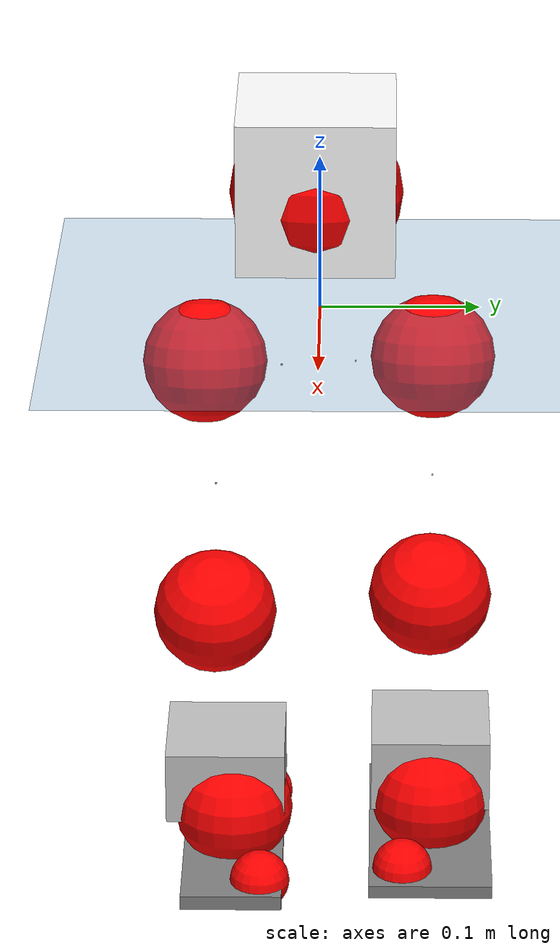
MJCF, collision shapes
<mujoco model="pi_12dof_release_v1">
  <compiler angle="radian" assetdir="assets" balanceinertia="true" inertiafromgeom="false"/>

  <option timestep="0.005" density="1.2" viscosity="2e-05"/>

  <size nkey="1"/>

  <visual>
    <quality shadowsize="8192"/>
    <map shadowclip="0.5"/>
  </visual>

  <default>
    <default class="/">
      <joint armature="0.01" damping="0.01" frictionloss="0.01"/>
      <geom contype="0" conaffinity="0" group="1" solref="-1000 -80"/>
      <site size="0.01 0.005 0.005" group="5"/>
      <general forcelimited="true" biastype="affine" gainprm="20" biasprm="0 -20 -0.5"/>
      <default class="foot">
        <geom size="0.0845 0.036 0.005" type="box" condim="6" group="4" priority="1" friction="0.9 0.2 0.2" solimp="0.015 1 0.005"/>
      </default>
      <default class="reward_collision_sphere">
        <geom group="5" rgba="1 0 0 1"/>
      </default>
    </default>
  </default>

  <asset>
    <texture type="skybox" colorspace="auto" name="//unnamed_texture_0" builtin="gradient" rgb1="0.95 0.95 0.95" rgb2="0.95 0.95 0.95" width="100" height="600"/>
    <texture type="2d" colorspace="auto" name="texplane" builtin="checker" rgb1="0.345 0.575 0.748" rgb2="0.345 0.575 0.748" markrgb="1 1 1" width="512" height="512"/>
    <material name="MatPlane" class="/" texture="texplane" texuniform="true" texrepeat="2 2" specular="0.9"/>
    <mesh name="baselink_1" class="/" file="baselink_1.STL"/>
    <mesh name="r_hip_pitch_link" class="/" file="r_hip_pitch_link.STL"/>
    <mesh name="r_hip_roll_link" class="/" file="r_hip_roll_link.STL"/>
    <mesh name="r_thigh_link" class="/" file="r_thigh_link.STL"/>
    <mesh name="r_calf_link" class="/" file="r_calf_link.STL"/>
    <mesh name="r_ankle_pitch_link" class="/" file="r_ankle_pitch_link.STL"/>
    <mesh name="r_ankle_roll_link" class="/" file="r_ankle_roll_link.STL"/>
    <mesh name="l_hip_pitch_link" class="/" file="l_hip_pitch_link.STL"/>
    <mesh name="l_hip_roll_link" class="/" file="l_hip_roll_link.STL"/>
    <mesh name="l_thigh_link" class="/" file="l_thigh_link.STL"/>
    <mesh name="l_calf_link" class="/" file="l_calf_link.STL"/>
    <mesh name="l_ankle_pitch_link" class="/" file="l_ankle_pitch_link.STL"/>
    <mesh name="l_ankle_roll_link" class="/" file="l_ankle_roll_link.STL"/>
  </asset>

  <worldbody>
    <geom name="floor" class="/" size="100 100 0.125" type="plane" group="0" material="MatPlane"/>
    <light name="toplight_shadow" class="/" pos="0 0 5" dir="0.0990148 0.0990148 -0.990148" type="directional" ambient="0.04 0.04 0.04" diffuse="0.55 0.55 0.55" specular="0.12 0.12 0.12"/>
    <light name="toplight_fill" class="/" pos="0 0 5" dir="0.0990148 0.0990148 -0.990148" type="directional" castshadow="false" ambient="0.04 0.04 0.04" diffuse="0.3 0.3 0.3" specular="0.08 0.08 0.08"/>
    <body name="trunk" pos="0.000696274 -0.00236153 -0.0022806" quat="0.999999 -0.000117256 0.000533946 -0.00103409">
      <inertial pos="-0.000406236 0.000123174 0.0481851" quat="0.691586 0.0142876 -0.00233832 0.722149" mass="2.08305" diaginertia="0.00528112 0.00595164 0.00806442"/>
      <joint name="//unnamed_joint_0" type="free"/>
      <geom name="//unnamed_geom_1" class="/" type="mesh" density="0" rgba="1 1 1 1" mesh="baselink_1"/>
      <geom name="//unnamed_geom_2" class="/" size="0.0489982 0.0489982 0.0489982" pos="0 0 0.0909527" type="box" rgba="1 1 1 1"/>
      <geom name="//unnamed_geom_3" class="reward_collision_sphere" size="0.053898" pos="0 0 0.0795836"/>
      <site name="imu" class="/" pos="0.00145796 -0.00437883 -0.00439066" size="0.00979964"/>
      <camera name="track" class="/" pos="0 -1.84118 0" quat="0.707107 0.707107 0 0" mode="trackcom"/>
      <camera name="ego_camera" class="/" pos="0.0661797 0 0.204643" quat="-0.5 -0.5 0.5 0.5"/>
      <body name="r_hip_pitch_link" pos="0.00198096 -0.0219872 -0.0365065" quat="0.992202 -0.00011106 -0.124639 1.55035e-05">
        <inertial pos="0.00089869 -0.0527244 -0.0012247" quat="-0.0213112 0.701031 -0.0271553 0.712295" mass="0.349769" diaginertia="5.96015e-05 6.35974e-05 0.000162284"/>
        <joint name="r_hip_pitch_joint" class="/" pos="0 0 0" axis="-0.00107684 -0.999991 0.00417523" stiffness="0.00981111" range="-1.69687 1.30194" armature="0.0101192" damping="0.0105508" frictionloss="0.00986503"/>
        <geom name="//unnamed_geom_4" class="/" type="mesh" density="0" rgba="0.75294 0.75294 0.75294 1" mesh="r_hip_pitch_link"/>
        <geom name="//unnamed_geom_5" class="/" size="0.000489982 0.000489982 0.000489982" type="box" rgba="0.75294 0.75294 0.75294 1"/>
        <body name="r_hip_roll_link" pos="0.00151939 -0.0482119 0.00271326" quat="1 7.35568e-05 -0.000212828 0.000395518">
          <inertial pos="-0.000278494 -0.00245832 -0.0724551" quat="0.711631 -0.0759509 -0.0922383 0.692319" mass="0.376722" diaginertia="0.000176324 0.000182226 0.000243859"/>
          <joint name="r_hip_roll_joint" class="/" pos="0 0 0" axis="-0.999909 0.0131841 -0.00276434" range="-0.115164 0.518869" armature="0.0106777" damping="0.0159817" frictionloss="0.00996377"/>
          <geom name="//unnamed_geom_6" class="/" type="mesh" density="0" rgba="0.75294 0.75294 0.75294 1" mesh="r_hip_roll_link"/>
          <geom name="//unnamed_geom_7" class="/" size="0.000489982 0.000489982 0.000489982" type="box" rgba="0.75294 0.75294 0.75294 1"/>
          <geom name="//unnamed_geom_8" class="reward_collision_sphere" size="0.0391986"/>
          <body name="r_thigh_link" pos="-7.10352e-05 0.0066271 -0.0789347" quat="1 -6.6294e-06 -2.52814e-06 4.80458e-05">
            <inertial pos="-0.000167235 -0.00108606 -0.0556458" quat="0.72936 0.684111 -0.0041096 -0.00313139" mass="0.1059" diaginertia="6.48833e-05 6.07992e-05 0.00010695"/>
            <joint name="r_thigh_joint" class="/" pos="0 0 0" axis="0.00245358 -0.00207415 -0.999995" range="-0.294089 0.600178" armature="0.0104859" damping="0.0113799" frictionloss="0.00969899"/>
            <geom name="//unnamed_geom_9" class="/" type="mesh" density="0" rgba="0.75294 0.75294 0.75294 1" mesh="r_thigh_link"/>
            <geom name="//unnamed_geom_10" class="/" size="0.000489982 0.000489982 0.000489982" type="box" rgba="0.75294 0.75294 0.75294 1"/>
            <body name="r_calf_link" pos="0.00121 -0.000540289 -0.082515" quat="0.947566 0.000242345 0.319559 0.000620443">
              <inertial pos="-0.00167863 0.00209628 -0.0817563" quat="0.999974 -0.00442587 0.00237033 0.0052251" mass="0.732996" diaginertia="0.00181397 0.00231476 0.00033841"/>
              <joint name="r_calf_joint" class="/" pos="0 0 0" axis="0.00225578 -0.999995 0.00236292" range="-1.70606 0.631654" armature="0.00972275" damping="0" frictionloss="0.00999846"/>
              <geom name="//unnamed_geom_11" class="/" type="mesh" density="0" rgba="0.75294 0.75294 0.75294 1" mesh="r_calf_link"/>
              <geom name="//unnamed_geom_12" class="/" size="0.000489982 0.000489982 0.000489982" type="box" rgba="0.75294 0.75294 0.75294 1"/>
              <geom name="//unnamed_geom_13" class="reward_collision_sphere" size="0.0391986"/>
              <body name="r_ankle_pitch_link" pos="-0.00272255 0.00362594 -0.159663" quat="0.980032 -0.000144222 -0.198839 6.52176e-05">
                <inertial pos="0.00676337 0.000859994 -4.89535e-05" quat="0.0104385 0.706827 0.00741643 0.707271" mass="0.168975" diaginertia="0.000158773 0.000145926 0.000226424"/>
                <joint name="r_ankle_pitch_joint" class="/" pos="0 0 0" axis="0.00298191 -0.999969 0.00723718" range="-1.3441 0.496829" armature="0.010317" damping="0.00805309" frictionloss="0.0101457"/>
                <geom name="//unnamed_geom_14" class="/" type="mesh" density="0" rgba="0.75294 0.75294 0.75294 1" mesh="r_ankle_pitch_link"/>
                <geom name="//unnamed_geom_15" class="/" size="0.0382186 0.0391986 0.0244991" type="box" rgba="0.75294 0.75294 0.75294 1"/>
                <body name="r_ankle_roll_link" pos="0.06464 0.00508316 0.000480506" quat="1 0.000487722 0.000134732 -0.000198374">
                  <inertial pos="-0.0237675 0.00264068 -0.0170882" quat="0.552077 0.426245 0.443831 0.562619" mass="0.484128" diaginertia="0.000579753 0.000693781 0.000515622"/>
                  <joint name="r_ankle_roll_joint" class="/" pos="0 0 0" axis="-0.999965 -0.00773012 0.00315603" stiffness="0.00159702" range="-0.168825 0.183612" armature="0.0100916" damping="0.019815" frictionloss="0.0109333"/>
                  <geom name="//unnamed_geom_16" class="/" type="mesh" density="0" rgba="0.75294 0.75294 0.75294 1" mesh="r_ankle_roll_link"/>
                  <geom name="//unnamed_geom_17" class="/" type="mesh" rgba="0.75294 0.75294 0.75294 1" mesh="r_ankle_roll_link"/>
                  <geom name="right_foot" class="foot" size="0.0809155 0.0329333 0.00490219" pos="-0.0450022 0 -0.050024"/>
                  <geom name="//unnamed_geom_19" class="reward_collision_sphere" size="0.0391986" pos="-0.0441198 0 -0.0227382"/>
                  <geom name="//unnamed_geom_20" class="reward_collision_sphere" size="0.0195993" pos="0.0132359 0.0184118 -0.0454763"/>
                  <geom name="//unnamed_geom_21" class="reward_collision_sphere" size="0.0195993" pos="-0.105887 0.0184118 -0.0454763"/>
                  <site name="right_foot" class="foot" pos="-0.0450022 0 -0.050024" size="0.00979964"/>
                </body>
              </body>
            </body>
          </body>
        </body>
      </body>
      <body name="l_hip_pitch_link" pos="-0.00308083 0.0245693 -0.0356848" quat="0.992216 -0.000190425 -0.124529 -0.000626364">
        <inertial pos="0.00205639 0.0477321 0.0025814" quat="-0.0338957 0.702763 0.0247439 0.710185" mass="0.358981" diaginertia="6.54166e-05 6.48374e-05 0.000191183"/>
        <joint name="l_hip_pitch_joint" class="/" pos="0 0 0" axis="-0.00755018 0.999961 0.00451142" range="-1.24738 1.77316" armature="0.0102564" damping="0.00697968" frictionloss="0.00995448"/>
        <geom name="//unnamed_geom_22" class="/" type="mesh" density="0" rgba="0.75294 0.75294 0.75294 1" mesh="l_hip_pitch_link"/>
        <geom name="//unnamed_geom_23" class="/" size="0.000489982 0.000489982 0.000489982" type="box" rgba="0.75294 0.75294 0.75294 1"/>
        <body name="l_hip_roll_link" pos="-0.000118707 0.0489015 0.00315146" quat="1 1.4591e-05 2.55778e-05 -3.85927e-06">
          <inertial pos="0.000341 -0.00119916 -0.0674633" quat="0.694621 -0.0693265 -0.0790914 0.711646" mass="0.367443" diaginertia="0.000172061 0.000189631 0.000246242"/>
          <joint name="l_hip_roll_joint" class="/" pos="0 0 0" axis="-0.999955 0.000938918 -0.00947145" stiffness="0.0103126" range="-0.484294 0.156442" armature="0.00948403" damping="0.00109517" frictionloss="0.0084669"/>
          <geom name="//unnamed_geom_24" class="/" type="mesh" density="0" rgba="0.75294 0.75294 0.75294 1" mesh="l_hip_roll_link"/>
          <geom name="//unnamed_geom_25" class="/" size="0.000489982 0.000489982 0.000489982" type="box" rgba="0.75294 0.75294 0.75294 1"/>
          <geom name="//unnamed_geom_26" class="reward_collision_sphere" size="0.0391986"/>
          <body name="l_thigh_link" pos="-0.00329413 0.000311768 -0.0766675" quat="0.999999 -0.000510599 -0.00117662 -0.000491812">
            <inertial pos="-0.000779983 0.000175522 -0.0546092" quat="0.672537 0.740064 0.000383626 0.000554821" mass="0.104002" diaginertia="6.56611e-05 6.1558e-05 0.000108606"/>
            <joint name="l_thigh_joint" class="/" pos="0 0 0" axis="-0.000348248 0.0014013 -0.999999" stiffness="0.00879414" range="-0.55763 0.327817" armature="0.00832048" damping="0" frictionloss="0.0109711"/>
            <geom name="//unnamed_geom_27" class="/" type="mesh" density="0" rgba="0.75294 0.75294 0.75294 1" mesh="l_thigh_link"/>
            <geom name="//unnamed_geom_28" class="/" size="0.000489982 0.000489982 0.000489982" type="box" rgba="0.75294 0.75294 0.75294 1"/>
            <body name="l_calf_link" pos="-0.000134665 -0.00077518 -0.0778944" quat="0.947804 0.000284544 0.318852 -0.000275406">
              <inertial pos="-0.000197129 0.000114627 -0.0824096" quat="0.999983 0.00125321 0.000305865 0.00573164" mass="0.737086" diaginertia="0.00181124 0.00229626 0.000314434"/>
              <joint name="l_calf_joint" class="/" pos="0 0 0" axis="-0.0113142 0.999927 0.00424527" stiffness="0.00468963" range="-0.627905 1.60673" armature="0.00847548" damping="0.00578677" frictionloss="0.0108202"/>
              <geom name="//unnamed_geom_29" class="/" type="mesh" density="0" rgba="0.75294 0.75294 0.75294 1" mesh="l_calf_link"/>
              <geom name="//unnamed_geom_30" class="/" size="0.000489982 0.000489982 0.000489982" type="box" rgba="0.75294 0.75294 0.75294 1"/>
              <geom name="//unnamed_geom_31" class="reward_collision_sphere" size="0.0391986"/>
              <body name="l_ankle_pitch_link" pos="-0.00213151 0.00225269 -0.162924" quat="0.980303 -0.000121442 -0.197497 0.000333209">
                <inertial pos="0.00461052 -0.0028288 -0.000550925" quat="-0.00119424 0.708814 0.00220868 0.705391" mass="0.173478" diaginertia="0.000168125 0.000145505 0.000225011"/>
                <joint name="l_ankle_pitch_joint" class="/" pos="0 0 0" axis="-0.00196197 0.999998 0.000637957" range="-0.520914 1.31801" armature="0.00951314" damping="0.0129054" frictionloss="0.00854827"/>
                <geom name="//unnamed_geom_32" class="/" type="mesh" density="0" rgba="0.75294 0.75294 0.75294 1" mesh="l_ankle_pitch_link"/>
                <geom name="//unnamed_geom_33" class="/" size="0.0382186 0.0391986 0.0244991" type="box" rgba="0.75294 0.75294 0.75294 1"/>
                <body name="l_ankle_roll_link" pos="0.0680566 -7.49107e-05 0.00147332" quat="1 -2.00508e-05 1.18626e-05 -0.000108655">
                  <inertial pos="-0.0246667 -0.00060344 -0.014735" quat="0.558552 0.43134 0.434383 0.559711" mass="0.50515" diaginertia="0.00062457 0.000709351 0.000543266"/>
                  <joint name="l_ankle_roll_joint" class="/" pos="0 0 0" axis="-0.999993 0.000206944 -0.00382733" range="-0.163693 0.143747" armature="0.00956558" damping="0.00383436" frictionloss="0.00853519"/>
                  <geom name="//unnamed_geom_34" class="/" type="mesh" density="0" rgba="0.75294 0.75294 0.75294 1" mesh="l_ankle_roll_link"/>
                  <geom name="//unnamed_geom_35" class="/" type="mesh" rgba="0.75294 0.75294 0.75294 1" mesh="l_ankle_roll_link"/>
                  <geom name="left_foot" class="foot" size="0.0818199 0.0403046 0.00434042" pos="-0.0450022 0 -0.050024"/>
                  <geom name="//unnamed_geom_37" class="reward_collision_sphere" size="0.0391986" pos="-0.0441198 0 -0.0227382"/>
                  <geom name="//unnamed_geom_38" class="reward_collision_sphere" size="0.0195993" pos="0.0132359 -0.0184118 -0.0454763"/>
                  <geom name="//unnamed_geom_39" class="reward_collision_sphere" size="0.0195993" pos="-0.105887 -0.0184118 -0.0454763"/>
                  <site name="left_foot" class="foot" pos="-0.0450022 0 -0.050024" size="0.00979964"/>
                </body>
              </body>
            </body>
          </body>
        </body>
      </body>
    </body>
  </worldbody>

  <contact>
    <pair class="/" geom1="floor" geom2="right_foot" name="//unnamed_contact_1"/>
    <pair class="/" geom1="floor" geom2="left_foot" name="//unnamed_contact_0"/>
  </contact>

  <actuator>
    <general name="r_hip_pitch_joint" class="/" joint="r_hip_pitch_joint" forcerange="-18.567 18.567" gainprm="18.3129" biasprm="0 -18.3129 -0.54447"/>
    <general name="r_hip_roll_joint" class="/" joint="r_hip_roll_joint" forcerange="-19.9871 19.9871" gainprm="18.3129" biasprm="0 -18.3129 -0.54447"/>
    <general name="r_thigh_joint" class="/" joint="r_thigh_joint" forcerange="-20.9114 20.9114" gainprm="18.3129" biasprm="0 -18.3129 -0.54447"/>
    <general name="r_calf_joint" class="/" joint="r_calf_joint" forcerange="-20.0129 20.0129" gainprm="18.3129" biasprm="0 -18.3129 -0.54447"/>
    <general name="r_ankle_pitch_joint" class="/" joint="r_ankle_pitch_joint" forcerange="-20.4362 20.4362" gainprm="18.3129" biasprm="0 -18.3129 -0.54447"/>
    <general name="r_ankle_roll_joint" class="/" joint="r_ankle_roll_joint" forcerange="-21.9322 21.9322" gainprm="18.3129" biasprm="0 -18.3129 -0.54447"/>
    <general name="l_hip_pitch_joint" class="/" joint="l_hip_pitch_joint" forcerange="-22.8489 22.8489" gainprm="18.3129" biasprm="0 -18.3129 -0.54447"/>
    <general name="l_hip_roll_joint" class="/" joint="l_hip_roll_joint" forcerange="-20.4079 20.4079" gainprm="18.3129" biasprm="0 -18.3129 -0.54447"/>
    <general name="l_thigh_joint" class="/" joint="l_thigh_joint" forcerange="-19.8547 19.8547" gainprm="18.3129" biasprm="0 -18.3129 -0.54447"/>
    <general name="l_calf_joint" class="/" joint="l_calf_joint" forcerange="-18.4357 18.4357" gainprm="18.3129" biasprm="0 -18.3129 -0.54447"/>
    <general name="l_ankle_pitch_joint" class="/" joint="l_ankle_pitch_joint" forcerange="-21.3433 21.3433" gainprm="18.3129" biasprm="0 -18.3129 -0.54447"/>
    <general name="l_ankle_roll_joint" class="/" joint="l_ankle_roll_joint" forcerange="-18.9894 18.9894" gainprm="18.3129" biasprm="0 -18.3129 -0.54447"/>
  </actuator>

  <sensor>
    <gyro site="imu" name="imu_angular_velocity"/>
    <velocimeter site="imu" name="imu_linear_velocity"/>
    <framelinvel objtype="site" objname="left_foot" name="left_foot_global_linear_velocity"/>
    <framelinvel objtype="site" objname="right_foot" name="right_foot_global_linear_velocity"/>
  </sensor>

  <keyframe>
    <key name="home" qpos="0 0 0.291 1 0 0 0 0.4 0 0 -0.8 0.4 0 -0.4 0 0 0.8 -0.4 0"/>
  </keyframe>
</mujoco>
